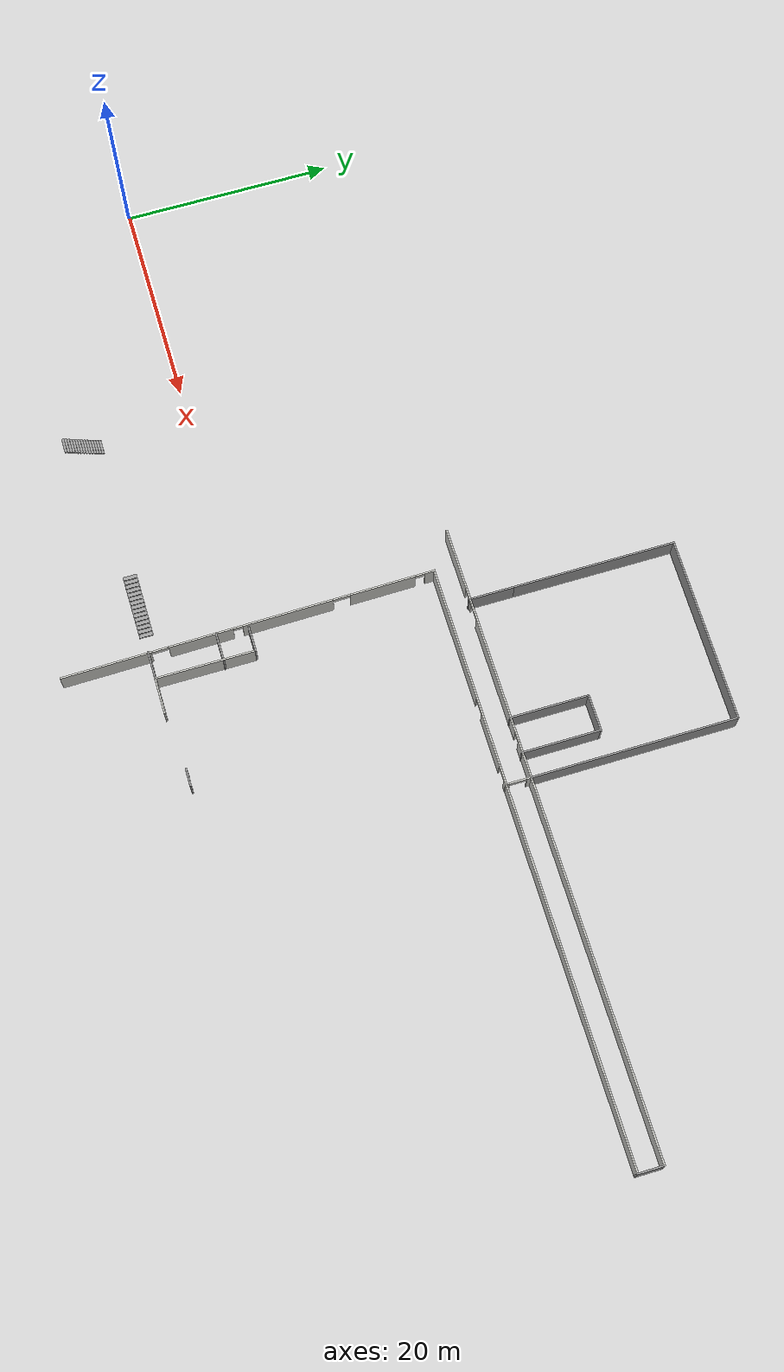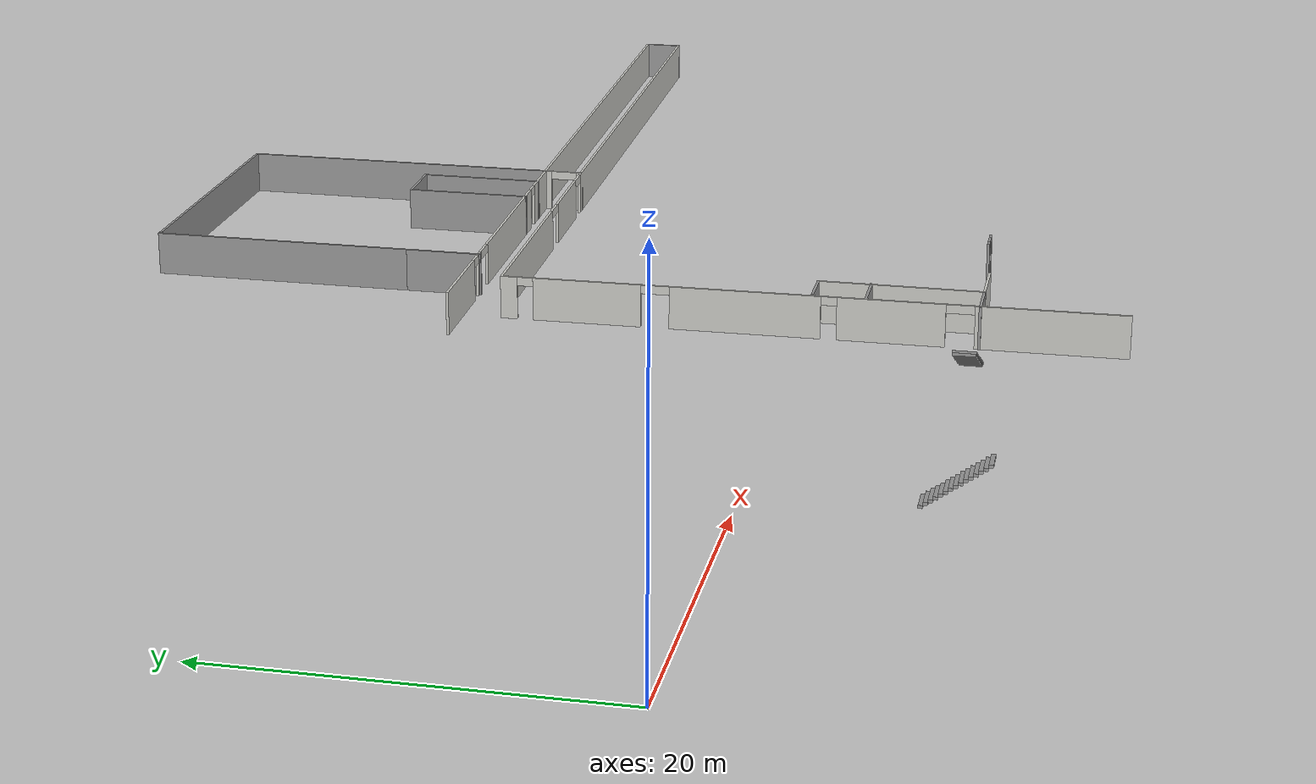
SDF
<sdf version="1.6">
 <world name="default">
  <model name="ground_plane">
   <static>1</static>
   <link name="link">
    <collision name="collision">
     <geometry><plane><normal>0 0 1</normal><size>100 100</size></plane></geometry>
     <surface><friction><ode><mu>100</mu><mu2>50</mu2></ode></friction></surface>
    </collision>
    <visual name="visual">
     <cast_shadows>0</cast_shadows>
     <geometry><plane><normal>0 0 1</normal><size>100 100</size></plane></geometry>
     <material>
      <script><uri>file://media/materials/scripts/gazebo.material</uri><name>Gazebo/Grey</name></script>
     </material>
    </visual>
   </link>
  </model>
  <model name="hospital_LG_detailed">
   <pose>51.8521 -11.413 0 0 -0 0</pose>
   <link name="Stairs_2">
    <visual name="Stairs_2_Visual_0">
     <pose>-8.86162 2.21028 0.083333 0 -0 -1.5708</pose>
     <geometry><box><size>1.27354 0.351869 0.166667</size></box></geometry>
     <material>
      <script><uri>file://media/materials/scripts/gazebo.material</uri><name>Gazebo/Grey</name></script>
      <ambient>1 1 1 1</ambient>
     </material>
     <meta><layer>0</layer></meta>
    </visual>
    <collision name="Stairs_2_Collision_0">
     <geometry><box><size>1.27354 0.351869 0.166667</size></box></geometry>
     <pose>-8.86162 2.21028 0.083333 0 -0 -1.5708</pose>
    </collision>
    <visual name="Stairs_2_Visual_1">
     <pose>-9.21349 2.21028 0.25 0 -0 -1.5708</pose>
     <geometry><box><size>1.27354 0.351869 0.166667</size></box></geometry>
     <material>
      <script><uri>file://media/materials/scripts/gazebo.material</uri><name>Gazebo/Grey</name></script>
      <ambient>1 1 1 1</ambient>
     </material>
     <meta><layer>0</layer></meta>
    </visual>
    <collision name="Stairs_2_Collision_1">
     <geometry><box><size>1.27354 0.351869 0.166667</size></box></geometry>
     <pose>-9.21349 2.21028 0.25 0 -0 -1.5708</pose>
    </collision>
    <visual name="Stairs_2_Visual_2">
     <pose>-9.56536 2.21028 0.416667 0 -0 -1.5708</pose>
     <geometry><box><size>1.27354 0.351869 0.166667</size></box></geometry>
     <material>
      <script><uri>file://media/materials/scripts/gazebo.material</uri><name>Gazebo/Grey</name></script>
      <ambient>1 1 1 1</ambient>
     </material>
     <meta><layer>0</layer></meta>
    </visual>
    <collision name="Stairs_2_Collision_2">
     <geometry><box><size>1.27354 0.351869 0.166667</size></box></geometry>
     <pose>-9.56536 2.21028 0.416667 0 -0 -1.5708</pose>
    </collision>
    <visual name="Stairs_2_Visual_3">
     <pose>-9.91723 2.21028 0.583333 0 -0 -1.5708</pose>
     <geometry><box><size>1.27354 0.351869 0.166667</size></box></geometry>
     <material>
      <script><uri>file://media/materials/scripts/gazebo.material</uri><name>Gazebo/Grey</name></script>
      <ambient>1 1 1 1</ambient>
     </material>
     <meta><layer>0</layer></meta>
    </visual>
    <collision name="Stairs_2_Collision_3">
     <geometry><box><size>1.27354 0.351869 0.166667</size></box></geometry>
     <pose>-9.91723 2.21028 0.583333 0 -0 -1.5708</pose>
    </collision>
    <visual name="Stairs_2_Visual_4">
     <pose>-10.2691 2.21028 0.75 0 -0 -1.5708</pose>
     <geometry><box><size>1.27354 0.351869 0.166667</size></box></geometry>
     <material>
      <script><uri>file://media/materials/scripts/gazebo.material</uri><name>Gazebo/Grey</name></script>
      <ambient>1 1 1 1</ambient>
     </material>
     <meta><layer>0</layer></meta>
    </visual>
    <collision name="Stairs_2_Collision_4">
     <geometry><box><size>1.27354 0.351869 0.166667</size></box></geometry>
     <pose>-10.2691 2.21028 0.75 0 -0 -1.5708</pose>
    </collision>
    <visual name="Stairs_2_Visual_5">
     <pose>-10.621 2.21028 0.916667 0 -0 -1.5708</pose>
     <geometry><box><size>1.27354 0.351869 0.166667</size></box></geometry>
     <material>
      <script><uri>file://media/materials/scripts/gazebo.material</uri><name>Gazebo/Grey</name></script>
      <ambient>1 1 1 1</ambient>
     </material>
     <meta><layer>0</layer></meta>
    </visual>
    <collision name="Stairs_2_Collision_5">
     <geometry><box><size>1.27354 0.351869 0.166667</size></box></geometry>
     <pose>-10.621 2.21028 0.916667 0 -0 -1.5708</pose>
    </collision>
    <visual name="Stairs_2_Visual_6">
     <pose>-10.9728 2.21028 1.08333 0 -0 -1.5708</pose>
     <geometry><box><size>1.27354 0.351869 0.166667</size></box></geometry>
     <material>
      <script><uri>file://media/materials/scripts/gazebo.material</uri><name>Gazebo/Grey</name></script>
      <ambient>1 1 1 1</ambient>
     </material>
     <meta><layer>0</layer></meta>
    </visual>
    <collision name="Stairs_2_Collision_6">
     <geometry><box><size>1.27354 0.351869 0.166667</size></box></geometry>
     <pose>-10.9728 2.21028 1.08333 0 -0 -1.5708</pose>
    </collision>
    <visual name="Stairs_2_Visual_7">
     <pose>-11.3247 2.21028 1.25 0 -0 -1.5708</pose>
     <geometry><box><size>1.27354 0.351869 0.166667</size></box></geometry>
     <material>
      <script><uri>file://media/materials/scripts/gazebo.material</uri><name>Gazebo/Grey</name></script>
      <ambient>1 1 1 1</ambient>
     </material>
     <meta><layer>0</layer></meta>
    </visual>
    <collision name="Stairs_2_Collision_7">
     <geometry><box><size>1.27354 0.351869 0.166667</size></box></geometry>
     <pose>-11.3247 2.21028 1.25 0 -0 -1.5708</pose>
    </collision>
    <visual name="Stairs_2_Visual_8">
     <pose>-11.6766 2.21028 1.41667 0 -0 -1.5708</pose>
     <geometry><box><size>1.27354 0.351869 0.166667</size></box></geometry>
     <material>
      <script><uri>file://media/materials/scripts/gazebo.material</uri><name>Gazebo/Grey</name></script>
      <ambient>1 1 1 1</ambient>
     </material>
     <meta><layer>0</layer></meta>
    </visual>
    <collision name="Stairs_2_Collision_8">
     <geometry><box><size>1.27354 0.351869 0.166667</size></box></geometry>
     <pose>-11.6766 2.21028 1.41667 0 -0 -1.5708</pose>
    </collision>
    <visual name="Stairs_2_Visual_9">
     <pose>-12.0284 2.21028 1.58333 0 -0 -1.5708</pose>
     <geometry><box><size>1.27354 0.351869 0.166667</size></box></geometry>
     <material>
      <script><uri>file://media/materials/scripts/gazebo.material</uri><name>Gazebo/Grey</name></script>
      <ambient>1 1 1 1</ambient>
     </material>
     <meta><layer>0</layer></meta>
    </visual>
    <collision name="Stairs_2_Collision_9">
     <geometry><box><size>1.27354 0.351869 0.166667</size></box></geometry>
     <pose>-12.0284 2.21028 1.58333 0 -0 -1.5708</pose>
    </collision>
    <visual name="Stairs_2_Visual_10">
     <pose>-12.3803 2.21028 1.75 0 -0 -1.5708</pose>
     <geometry><box><size>1.27354 0.351869 0.166667</size></box></geometry>
     <material>
      <script><uri>file://media/materials/scripts/gazebo.material</uri><name>Gazebo/Grey</name></script>
      <ambient>1 1 1 1</ambient>
     </material>
     <meta><layer>0</layer></meta>
    </visual>
    <collision name="Stairs_2_Collision_10">
     <geometry><box><size>1.27354 0.351869 0.166667</size></box></geometry>
     <pose>-12.3803 2.21028 1.75 0 -0 -1.5708</pose>
    </collision>
    <visual name="Stairs_2_Visual_11">
     <pose>-12.7322 2.21028 1.91667 0 -0 -1.5708</pose>
     <geometry><box><size>1.27354 0.351869 0.166667</size></box></geometry>
     <material>
      <script><uri>file://media/materials/scripts/gazebo.material</uri><name>Gazebo/Grey</name></script>
      <ambient>1 1 1 1</ambient>
     </material>
     <meta><layer>0</layer></meta>
    </visual>
    <collision name="Stairs_2_Collision_11">
     <geometry><box><size>1.27354 0.351869 0.166667</size></box></geometry>
     <pose>-12.7322 2.21028 1.91667 0 -0 -1.5708</pose>
    </collision>
    <visual name="Stairs_2_Visual_12">
     <pose>-13.0841 2.21028 2.08333 0 -0 -1.5708</pose>
     <geometry><box><size>1.27354 0.351869 0.166667</size></box></geometry>
     <material>
      <script><uri>file://media/materials/scripts/gazebo.material</uri><name>Gazebo/Grey</name></script>
      <ambient>1 1 1 1</ambient>
     </material>
     <meta><layer>0</layer></meta>
    </visual>
    <collision name="Stairs_2_Collision_12">
     <geometry><box><size>1.27354 0.351869 0.166667</size></box></geometry>
     <pose>-13.0841 2.21028 2.08333 0 -0 -1.5708</pose>
    </collision>
    <visual name="Stairs_2_Visual_13">
     <pose>-13.4359 2.21028 2.25 0 -0 -1.5708</pose>
     <geometry><box><size>1.27354 0.351869 0.166667</size></box></geometry>
     <material>
      <script><uri>file://media/materials/scripts/gazebo.material</uri><name>Gazebo/Grey</name></script>
      <ambient>1 1 1 1</ambient>
     </material>
     <meta><layer>0</layer></meta>
    </visual>
    <collision name="Stairs_2_Collision_13">
     <geometry><box><size>1.27354 0.351869 0.166667</size></box></geometry>
     <pose>-13.4359 2.21028 2.25 0 -0 -1.5708</pose>
    </collision>
    <visual name="Stairs_2_Visual_14">
     <pose>-13.7878 2.21028 2.41667 0 -0 -1.5708</pose>
     <geometry><box><size>1.27354 0.351869 0.166667</size></box></geometry>
     <material>
      <script><uri>file://media/materials/scripts/gazebo.material</uri><name>Gazebo/Grey</name></script>
      <ambient>1 1 1 1</ambient>
     </material>
     <meta><layer>0</layer></meta>
    </visual>
    <collision name="Stairs_2_Collision_14">
     <geometry><box><size>1.27354 0.351869 0.166667</size></box></geometry>
     <pose>-13.7878 2.21028 2.41667 0 -0 -1.5708</pose>
    </collision>
   </link>
   <link name="Stairs_3">
    <visual name="Stairs_3_Visual_0">
     <pose>-28.4104 2.7962 0.083333 0 -0 0</pose>
     <geometry><box><size>1.42214 0.233333 0.166667</size></box></geometry>
     <material>
      <script><uri>file://media/materials/scripts/gazebo.material</uri><name>Gazebo/Grey</name></script>
      <ambient>1 1 1 1</ambient>
     </material>
     <meta><layer>0</layer></meta>
    </visual>
    <collision name="Stairs_3_Collision_0">
     <geometry><box><size>1.42214 0.233333 0.166667</size></box></geometry>
     <pose>-28.4104 2.7962 0.083333 0 -0 0</pose>
    </collision>
    <visual name="Stairs_3_Visual_1">
     <pose>-28.4104 2.56286 0.25 0 -0 0</pose>
     <geometry><box><size>1.42214 0.233333 0.166667</size></box></geometry>
     <material>
      <script><uri>file://media/materials/scripts/gazebo.material</uri><name>Gazebo/Grey</name></script>
      <ambient>1 1 1 1</ambient>
     </material>
     <meta><layer>0</layer></meta>
    </visual>
    <collision name="Stairs_3_Collision_1">
     <geometry><box><size>1.42214 0.233333 0.166667</size></box></geometry>
     <pose>-28.4104 2.56286 0.25 0 -0 0</pose>
    </collision>
    <visual name="Stairs_3_Visual_2">
     <pose>-28.4104 2.32953 0.416667 0 -0 0</pose>
     <geometry><box><size>1.42214 0.233333 0.166667</size></box></geometry>
     <material>
      <script><uri>file://media/materials/scripts/gazebo.material</uri><name>Gazebo/Grey</name></script>
      <ambient>1 1 1 1</ambient>
     </material>
     <meta><layer>0</layer></meta>
    </visual>
    <collision name="Stairs_3_Collision_2">
     <geometry><box><size>1.42214 0.233333 0.166667</size></box></geometry>
     <pose>-28.4104 2.32953 0.416667 0 -0 0</pose>
    </collision>
    <visual name="Stairs_3_Visual_3">
     <pose>-28.4104 2.0962 0.583333 0 -0 0</pose>
     <geometry><box><size>1.42214 0.233333 0.166667</size></box></geometry>
     <material>
      <script><uri>file://media/materials/scripts/gazebo.material</uri><name>Gazebo/Grey</name></script>
      <ambient>1 1 1 1</ambient>
     </material>
     <meta><layer>0</layer></meta>
    </visual>
    <collision name="Stairs_3_Collision_3">
     <geometry><box><size>1.42214 0.233333 0.166667</size></box></geometry>
     <pose>-28.4104 2.0962 0.583333 0 -0 0</pose>
    </collision>
    <visual name="Stairs_3_Visual_4">
     <pose>-28.4104 1.86286 0.75 0 -0 0</pose>
     <geometry><box><size>1.42214 0.233333 0.166667</size></box></geometry>
     <material>
      <script><uri>file://media/materials/scripts/gazebo.material</uri><name>Gazebo/Grey</name></script>
      <ambient>1 1 1 1</ambient>
     </material>
     <meta><layer>0</layer></meta>
    </visual>
    <collision name="Stairs_3_Collision_4">
     <geometry><box><size>1.42214 0.233333 0.166667</size></box></geometry>
     <pose>-28.4104 1.86286 0.75 0 -0 0</pose>
    </collision>
    <visual name="Stairs_3_Visual_5">
     <pose>-28.4104 1.62953 0.916667 0 -0 0</pose>
     <geometry><box><size>1.42214 0.233333 0.166667</size></box></geometry>
     <material>
      <script><uri>file://media/materials/scripts/gazebo.material</uri><name>Gazebo/Grey</name></script>
      <ambient>1 1 1 1</ambient>
     </material>
     <meta><layer>0</layer></meta>
    </visual>
    <collision name="Stairs_3_Collision_5">
     <geometry><box><size>1.42214 0.233333 0.166667</size></box></geometry>
     <pose>-28.4104 1.62953 0.916667 0 -0 0</pose>
    </collision>
    <visual name="Stairs_3_Visual_6">
     <pose>-28.4104 1.3962 1.08333 0 -0 0</pose>
     <geometry><box><size>1.42214 0.233333 0.166667</size></box></geometry>
     <material>
      <script><uri>file://media/materials/scripts/gazebo.material</uri><name>Gazebo/Grey</name></script>
      <ambient>1 1 1 1</ambient>
     </material>
     <meta><layer>0</layer></meta>
    </visual>
    <collision name="Stairs_3_Collision_6">
     <geometry><box><size>1.42214 0.233333 0.166667</size></box></geometry>
     <pose>-28.4104 1.3962 1.08333 0 -0 0</pose>
    </collision>
    <visual name="Stairs_3_Visual_7">
     <pose>-28.4104 1.16287 1.25 0 -0 0</pose>
     <geometry><box><size>1.42214 0.233333 0.166667</size></box></geometry>
     <material>
      <script><uri>file://media/materials/scripts/gazebo.material</uri><name>Gazebo/Grey</name></script>
      <ambient>1 1 1 1</ambient>
     </material>
     <meta><layer>0</layer></meta>
    </visual>
    <collision name="Stairs_3_Collision_7">
     <geometry><box><size>1.42214 0.233333 0.166667</size></box></geometry>
     <pose>-28.4104 1.16287 1.25 0 -0 0</pose>
    </collision>
    <visual name="Stairs_3_Visual_8">
     <pose>-28.4104 0.929532 1.41667 0 -0 0</pose>
     <geometry><box><size>1.42214 0.233333 0.166667</size></box></geometry>
     <material>
      <script><uri>file://media/materials/scripts/gazebo.material</uri><name>Gazebo/Grey</name></script>
      <ambient>1 1 1 1</ambient>
     </material>
     <meta><layer>0</layer></meta>
    </visual>
    <collision name="Stairs_3_Collision_8">
     <geometry><box><size>1.42214 0.233333 0.166667</size></box></geometry>
     <pose>-28.4104 0.929532 1.41667 0 -0 0</pose>
    </collision>
    <visual name="Stairs_3_Visual_9">
     <pose>-28.4104 0.696199 1.58333 0 -0 0</pose>
     <geometry><box><size>1.42214 0.233333 0.166667</size></box></geometry>
     <material>
      <script><uri>file://media/materials/scripts/gazebo.material</uri><name>Gazebo/Grey</name></script>
      <ambient>1 1 1 1</ambient>
     </material>
     <meta><layer>0</layer></meta>
    </visual>
    <collision name="Stairs_3_Collision_9">
     <geometry><box><size>1.42214 0.233333 0.166667</size></box></geometry>
     <pose>-28.4104 0.696199 1.58333 0 -0 0</pose>
    </collision>
    <visual name="Stairs_3_Visual_10">
     <pose>-28.4104 0.462866 1.75 0 -0 0</pose>
     <geometry><box><size>1.42214 0.233333 0.166667</size></box></geometry>
     <material>
      <script><uri>file://media/materials/scripts/gazebo.material</uri><name>Gazebo/Grey</name></script>
      <ambient>1 1 1 1</ambient>
     </material>
     <meta><layer>0</layer></meta>
    </visual>
    <collision name="Stairs_3_Collision_10">
     <geometry><box><size>1.42214 0.233333 0.166667</size></box></geometry>
     <pose>-28.4104 0.462866 1.75 0 -0 0</pose>
    </collision>
    <visual name="Stairs_3_Visual_11">
     <pose>-28.4104 0.229532 1.91667 0 -0 0</pose>
     <geometry><box><size>1.42214 0.233333 0.166667</size></box></geometry>
     <material>
      <script><uri>file://media/materials/scripts/gazebo.material</uri><name>Gazebo/Grey</name></script>
      <ambient>1 1 1 1</ambient>
     </material>
     <meta><layer>0</layer></meta>
    </visual>
    <collision name="Stairs_3_Collision_11">
     <geometry><box><size>1.42214 0.233333 0.166667</size></box></geometry>
     <pose>-28.4104 0.229532 1.91667 0 -0 0</pose>
    </collision>
    <visual name="Stairs_3_Visual_12">
     <pose>-28.4104 -0.003801 2.08333 0 -0 0</pose>
     <geometry><box><size>1.42214 0.233333 0.166667</size></box></geometry>
     <material>
      <script><uri>file://media/materials/scripts/gazebo.material</uri><name>Gazebo/Grey</name></script>
      <ambient>1 1 1 1</ambient>
     </material>
     <meta><layer>0</layer></meta>
    </visual>
    <collision name="Stairs_3_Collision_12">
     <geometry><box><size>1.42214 0.233333 0.166667</size></box></geometry>
     <pose>-28.4104 -0.003801 2.08333 0 -0 0</pose>
    </collision>
    <visual name="Stairs_3_Visual_13">
     <pose>-28.4104 -0.237134 2.25 0 -0 0</pose>
     <geometry><box><size>1.42214 0.233333 0.166667</size></box></geometry>
     <material>
      <script><uri>file://media/materials/scripts/gazebo.material</uri><name>Gazebo/Grey</name></script>
      <ambient>1 1 1 1</ambient>
     </material>
     <meta><layer>0</layer></meta>
    </visual>
    <collision name="Stairs_3_Collision_13">
     <geometry><box><size>1.42214 0.233333 0.166667</size></box></geometry>
     <pose>-28.4104 -0.237134 2.25 0 -0 0</pose>
    </collision>
    <visual name="Stairs_3_Visual_14">
     <pose>-28.4104 -0.470468 2.41667 0 -0 0</pose>
     <geometry><box><size>1.42214 0.233333 0.166667</size></box></geometry>
     <material>
      <script><uri>file://media/materials/scripts/gazebo.material</uri><name>Gazebo/Grey</name></script>
      <ambient>1 1 1 1</ambient>
     </material>
     <meta><layer>0</layer></meta>
    </visual>
    <collision name="Stairs_3_Collision_14">
     <geometry><box><size>1.42214 0.233333 0.166667</size></box></geometry>
     <pose>-28.4104 -0.470468 2.41667 0 -0 0</pose>
    </collision>
   </link>
   <link name="Wall_19">
    <pose>19.8114 31.6969 0 0 -0 0.011412</pose>
    <visual name="Wall_19_Visual_0">
     <pose>-26.9038 0 1.25 0 -0 0</pose>
     <geometry><box><size>5.94974 0.15 2.5</size></box></geometry>
     <material>
      <script><uri>file://media/materials/scripts/gazebo.material</uri><name>Gazebo/CeilingTiled</name></script>
      <ambient>1 1 1 1</ambient>
     </material>
     <meta><layer>0</layer></meta>
    </visual>
    <collision name="Wall_19_Collision_0">
     <geometry><box><size>5.94974 0.15 2.5</size></box></geometry>
     <pose>-26.9038 0 1.25 0 -0 0</pose>
    </collision>
    <visual name="Wall_19_Visual_1">
     <pose>-22.7092 0 1.25 0 -0 0</pose>
     <geometry><box><size>0.639467 0.15 2.5</size></box></geometry>
     <material>
      <script><uri>file://media/materials/scripts/gazebo.material</uri><name>Gazebo/CeilingTiled</name></script>
      <ambient>1 1 1 1</ambient>
     </material>
     <meta><layer>0</layer></meta>
    </visual>
    <collision name="Wall_19_Collision_1">
     <geometry><box><size>0.639467 0.15 2.5</size></box></geometry>
     <pose>-22.7092 0 1.25 0 -0 0</pose>
    </collision>
    <visual name="Wall_19_Visual_2">
     <pose>-15.171 0 1.25 0 -0 0</pose>
     <geometry><box><size>11.2421 0.15 2.5</size></box></geometry>
     <material>
      <script><uri>file://media/materials/scripts/gazebo.material</uri><name>Gazebo/CeilingTiled</name></script>
      <ambient>1 1 1 1</ambient>
     </material>
     <meta><layer>0</layer></meta>
    </visual>
    <collision name="Wall_19_Collision_2">
     <geometry><box><size>11.2421 0.15 2.5</size></box></geometry>
     <pose>-15.171 0 1.25 0 -0 0</pose>
    </collision>
    <visual name="Wall_19_Visual_3">
     <pose>10.6144 0 1.25 0 -0 0</pose>
     <geometry><box><size>38.5287 0.15 2.5</size></box></geometry>
     <material>
      <script><uri>file://media/materials/scripts/gazebo.material</uri><name>Gazebo/CeilingTiled</name></script>
      <ambient>1 1 1 1</ambient>
     </material>
     <meta><layer>0</layer></meta>
    </visual>
    <collision name="Wall_19_Collision_3">
     <geometry><box><size>38.5287 0.15 2.5</size></box></geometry>
     <pose>10.6144 0 1.25 0 -0 0</pose>
    </collision>
    <visual name="Wall_19_Visual_4">
     <pose>-23.479 0 2.25 0 -0 0</pose>
     <geometry><box><size>0.9 0.15 0.5</size></box></geometry>
     <material>
      <script><uri>file://media/materials/scripts/gazebo.material</uri><name>Gazebo/CeilingTiled</name></script>
      <ambient>1 1 1 1</ambient>
     </material>
     <meta><layer>0</layer></meta>
    </visual>
    <collision name="Wall_19_Collision_4">
     <geometry><box><size>0.9 0.15 0.5</size></box></geometry>
     <pose>-23.479 0 2.25 0 -0 0</pose>
    </collision>
    <visual name="Wall_19_Visual_5">
     <pose>-21.5908 0 2.25 0 -0 0</pose>
     <geometry><box><size>1.59746 0.15 0.5</size></box></geometry>
     <material>
      <script><uri>file://media/materials/scripts/gazebo.material</uri><name>Gazebo/CeilingTiled</name></script>
      <ambient>1 1 1 1</ambient>
     </material>
     <meta><layer>0</layer></meta>
    </visual>
    <collision name="Wall_19_Collision_5">
     <geometry><box><size>1.59746 0.15 0.5</size></box></geometry>
     <pose>-21.5908 0 2.25 0 -0 0</pose>
    </collision>
    <visual name="Wall_19_Visual_6">
     <pose>-9.09996 0 2.25 0 -0 0</pose>
     <geometry><box><size>0.9 0.15 0.5</size></box></geometry>
     <material>
      <script><uri>file://media/materials/scripts/gazebo.material</uri><name>Gazebo/CeilingTiled</name></script>
      <ambient>1 1 1 1</ambient>
     </material>
     <meta><layer>0</layer></meta>
    </visual>
    <collision name="Wall_19_Collision_6">
     <geometry><box><size>0.9 0.15 0.5</size></box></geometry>
     <pose>-9.09996 0 2.25 0 -0 0</pose>
    </collision>
   </link>
   <link name="Wall_20">
    <collision name="Wall_20_Collision">
     <geometry><box><size>2.5 0.15 2.5</size></box></geometry>
     <pose>0 0 1.25 0 -0 0</pose>
    </collision>
    <visual name="Wall_20_Visual">
     <pose>0 0 1.25 0 -0 0</pose>
     <geometry><box><size>2.5 0.15 2.5</size></box></geometry>
     <material>
      <script><uri>file://media/materials/scripts/gazebo.material</uri><name>Gazebo/Grey</name></script>
      <ambient>1 1 1 1</ambient>
     </material>
     <meta><layer>0</layer></meta>
    </visual>
    <pose>49.6132 30.862 0 0 -0 -1.5708</pose>
   </link>
   <link name="Wall_21">
    <pose>21.5308 29.3985 0 0 -0 -3.13082</pose>
    <visual name="Wall_21_Visual_0">
     <pose>-10.3888 0 1.25 0 -0 0</pose>
     <geometry><box><size>35.5404 0.15 2.5</size></box></geometry>
     <material>
      <script><uri>file://media/materials/scripts/gazebo.material</uri><name>Gazebo/CeilingTiled</name></script>
      <ambient>1 1 1 1</ambient>
     </material>
     <meta><layer>0</layer></meta>
    </visual>
    <collision name="Wall_21_Collision_0">
     <geometry><box><size>35.5404 0.15 2.5</size></box></geometry>
     <pose>-10.3888 0 1.25 0 -0 0</pose>
    </collision>
    <visual name="Wall_21_Visual_1">
     <pose>11.2873 0 1.25 0 -0 0</pose>
     <geometry><box><size>5.11112 0.15 2.5</size></box></geometry>
     <material>
      <script><uri>file://media/materials/scripts/gazebo.material</uri><name>Gazebo/CeilingTiled</name></script>
      <ambient>1 1 1 1</ambient>
     </material>
     <meta><layer>0</layer></meta>
    </visual>
    <collision name="Wall_21_Collision_1">
     <geometry><box><size>5.11112 0.15 2.5</size></box></geometry>
     <pose>11.2873 0 1.25 0 -0 0</pose>
    </collision>
    <visual name="Wall_21_Visual_2">
     <pose>21.7323 0 1.25 0 -0 0</pose>
     <geometry><box><size>12.8533 0.15 2.5</size></box></geometry>
     <material>
      <script><uri>file://media/materials/scripts/gazebo.material</uri><name>Gazebo/CeilingTiled</name></script>
      <ambient>1 1 1 1</ambient>
     </material>
     <meta><layer>0</layer></meta>
    </visual>
    <collision name="Wall_21_Collision_2">
     <geometry><box><size>12.8533 0.15 2.5</size></box></geometry>
     <pose>21.7323 0 1.25 0 -0 0</pose>
    </collision>
    <visual name="Wall_21_Visual_3">
     <pose>8.05659 0 2.25 0 -0 0</pose>
     <geometry><box><size>1.35029 0.15 0.5</size></box></geometry>
     <material>
      <script><uri>file://media/materials/scripts/gazebo.material</uri><name>Gazebo/CeilingTiled</name></script>
      <ambient>1 1 1 1</ambient>
     </material>
     <meta><layer>0</layer></meta>
    </visual>
    <collision name="Wall_21_Collision_3">
     <geometry><box><size>1.35029 0.15 0.5</size></box></geometry>
     <pose>8.05659 0 2.25 0 -0 0</pose>
    </collision>
    <visual name="Wall_21_Visual_4">
     <pose>14.5743 0 2.25 0 -0 0</pose>
     <geometry><box><size>1.46286 0.15 0.5</size></box></geometry>
     <material>
      <script><uri>file://media/materials/scripts/gazebo.material</uri><name>Gazebo/CeilingTiled</name></script>
      <ambient>1 1 1 1</ambient>
     </material>
     <meta><layer>0</layer></meta>
    </visual>
    <collision name="Wall_21_Collision_4">
     <geometry><box><size>1.46286 0.15 0.5</size></box></geometry>
     <pose>14.5743 0 2.25 0 -0 0</pose>
    </collision>
   </link>
   <link name="Wall_23">
    <pose>-6.34809 11.4815 0 0 -0 -1.55855</pose>
    <visual name="Wall_23_Visual_0">
     <pose>-17.1986 0 1.25 0 -0 0</pose>
     <geometry><box><size>0.984488 0.15 2.5</size></box></geometry>
     <material>
      <script><uri>file://media/materials/scripts/gazebo.material</uri><name>Gazebo/CeilingTiled</name></script>
      <ambient>1 1 1 1</ambient>
     </material>
     <meta><layer>0</layer></meta>
    </visual>
    <collision name="Wall_23_Collision_0">
     <geometry><box><size>0.984488 0.15 2.5</size></box></geometry>
     <pose>-17.1986 0 1.25 0 -0 0</pose>
    </collision>
    <visual name="Wall_23_Visual_1">
     <pose>-12.6832 0 1.25 0 -0 0</pose>
     <geometry><box><size>6.2462 0.15 2.5</size></box></geometry>
     <material>
      <script><uri>file://media/materials/scripts/gazebo.material</uri><name>Gazebo/CeilingTiled</name></script>
      <ambient>1 1 1 1</ambient>
     </material>
     <meta><layer>0</layer></meta>
    </visual>
    <collision name="Wall_23_Collision_1">
     <geometry><box><size>6.2462 0.15 2.5</size></box></geometry>
     <pose>-12.6832 0 1.25 0 -0 0</pose>
    </collision>
    <visual name="Wall_23_Visual_2">
     <pose>-3.66014 0 1.25 0 -0 0</pose>
     <geometry><box><size>8.56539 0.15 2.5</size></box></geometry>
     <material>
      <script><uri>file://media/materials/scripts/gazebo.material</uri><name>Gazebo/CeilingTiled</name></script>
      <ambient>1 1 1 1</ambient>
     </material>
     <meta><layer>0</layer></meta>
    </visual>
    <collision name="Wall_23_Collision_2">
     <geometry><box><size>8.56539 0.15 2.5</size></box></geometry>
     <pose>-3.66014 0 1.25 0 -0 0</pose>
    </collision>
    <visual name="Wall_23_Visual_3">
     <pose>4.54792 0 1.25 0 -0 0</pose>
     <geometry><box><size>6.05074 0.15 2.5</size></box></geometry>
     <material>
      <script><uri>file://media/materials/scripts/gazebo.material</uri><name>Gazebo/CeilingTiled</name></script>
      <ambient>1 1 1 1</ambient>
     </material>
     <meta><layer>0</layer></meta>
    </visual>
    <collision name="Wall_23_Collision_3">
     <geometry><box><size>6.05074 0.15 2.5</size></box></geometry>
     <pose>4.54792 0 1.25 0 -0 0</pose>
    </collision>
    <visual name="Wall_23_Visual_4">
     <pose>13.4369 0 1.25 0 -0 0</pose>
     <geometry><box><size>8.50789 0.15 2.5</size></box></geometry>
     <material>
      <script><uri>file://media/materials/scripts/gazebo.material</uri><name>Gazebo/CeilingTiled</name></script>
      <ambient>1 1 1 1</ambient>
     </material>
     <meta><layer>0</layer></meta>
    </visual>
    <collision name="Wall_23_Collision_4">
     <geometry><box><size>8.50789 0.15 2.5</size></box></geometry>
     <pose>13.4369 0 1.25 0 -0 0</pose>
    </collision>
    <visual name="Wall_23_Visual_5">
     <pose>-16.2563 0 2.25 0 -0 0</pose>
     <geometry><box><size>0.9 0.15 0.5</size></box></geometry>
     <material>
      <script><uri>file://media/materials/scripts/gazebo.material</uri><name>Gazebo/CeilingTiled</name></script>
      <ambient>1 1 1 1</ambient>
     </material>
     <meta><layer>0</layer></meta>
    </visual>
    <collision name="Wall_23_Collision_5">
     <geometry><box><size>0.9 0.15 0.5</size></box></geometry>
     <pose>-16.2563 0 2.25 0 -0 0</pose>
    </collision>
    <visual name="Wall_23_Visual_6">
     <pose>-8.75149 0 2.25 0 -0 0</pose>
     <geometry><box><size>1.61732 0.15 0.5</size></box></geometry>
     <material>
      <script><uri>file://media/materials/scripts/gazebo.material</uri><name>Gazebo/CeilingTiled</name></script>
      <ambient>1 1 1 1</ambient>
     </material>
     <meta><layer>0</layer></meta>
    </visual>
    <collision name="Wall_23_Collision_6">
     <geometry><box><size>1.61732 0.15 0.5</size></box></geometry>
     <pose>-8.75149 0 2.25 0 -0 0</pose>
    </collision>
    <visual name="Wall_23_Visual_7">
     <pose>1.07256 0 2.25 0 -0 0</pose>
     <geometry><box><size>0.9 0.15 0.5</size></box></geometry>
     <material>
      <script><uri>file://media/materials/scripts/gazebo.material</uri><name>Gazebo/CeilingTiled</name></script>
      <ambient>1 1 1 1</ambient>
     </material>
     <meta><layer>0</layer></meta>
    </visual>
    <collision name="Wall_23_Collision_7">
     <geometry><box><size>0.9 0.15 0.5</size></box></geometry>
     <pose>1.07256 0 2.25 0 -0 0</pose>
    </collision>
    <visual name="Wall_23_Visual_8">
     <pose>8.37812 0 2.25 0 -0 0</pose>
     <geometry><box><size>1.60965 0.15 0.5</size></box></geometry>
     <material>
      <script><uri>file://media/materials/scripts/gazebo.material</uri><name>Gazebo/CeilingTiled</name></script>
      <ambient>1 1 1 1</ambient>
     </material>
     <meta><layer>0</layer></meta>
    </visual>
    <collision name="Wall_23_Collision_8">
     <geometry><box><size>1.60965 0.15 0.5</size></box></geometry>
     <pose>8.37812 0 2.25 0 -0 0</pose>
    </collision>
   </link>
   <link name="Wall_61">
    <collision name="Wall_61_Collision">
     <geometry><box><size>2.75 0.15 2.5</size></box></geometry>
     <pose>0 0 1.25 0 -0 0</pose>
    </collision>
    <visual name="Wall_61_Visual">
     <pose>0 0 1.25 0 -0 0</pose>
     <geometry><box><size>2.75 0.15 2.5</size></box></geometry>
     <material>
      <script><uri>file://media/materials/scripts/gazebo.material</uri><name>Gazebo/Grey</name></script>
      <ambient>1 1 1 1</ambient>
     </material>
     <meta><layer>0</layer></meta>
    </visual>
    <pose>-5.00822 2.01978 0 0 -0 0</pose>
   </link>
   <link name="Wall_62">
    <collision name="Wall_62_Collision">
     <geometry><box><size>9.5 0.15 2.5</size></box></geometry>
     <pose>0 0 1.25 0 -0 0</pose>
    </collision>
    <visual name="Wall_62_Visual">
     <pose>0 0 1.25 0 -0 0</pose>
     <geometry><box><size>9.5 0.15 2.5</size></box></geometry>
     <material>
      <script><uri>file://media/materials/scripts/gazebo.material</uri><name>Gazebo/CeilingTiled</name></script>
      <ambient>1 1 1 1</ambient>
     </material>
     <meta><layer>0</layer></meta>
    </visual>
    <pose>-3.70822 6.69478 0 0 -0 1.5708</pose>
   </link>
   <link name="Wall_63">
    <collision name="Wall_63_Collision">
     <geometry><box><size>2.5 0.15 2.5</size></box></geometry>
     <pose>0 0 1.25 0 -0 0</pose>
    </collision>
    <visual name="Wall_63_Visual">
     <pose>0 0 1.25 0 -0 0</pose>
     <geometry><box><size>2.5 0.15 2.5</size></box></geometry>
     <material>
      <script><uri>file://media/materials/scripts/gazebo.material</uri><name>Gazebo/Grey</name></script>
      <ambient>1 1 1 1</ambient>
     </material>
     <meta><layer>0</layer></meta>
    </visual>
    <pose>-4.88322 11.3698 0 0 -0 3.14159</pose>
   </link>
   <link name="Wall_65">
    <collision name="Wall_65_Collision">
     <geometry><box><size>2.75 0.15 2.5</size></box></geometry>
     <pose>0 0 1.25 0 -0 0</pose>
    </collision>
    <visual name="Wall_65_Visual">
     <pose>0 0 1.25 0 -0 0</pose>
     <geometry><box><size>2.75 0.15 2.5</size></box></geometry>
     <material>
      <script><uri>file://media/materials/scripts/gazebo.material</uri><name>Gazebo/Grey</name></script>
      <ambient>1 1 1 1</ambient>
     </material>
     <meta><layer>0</layer></meta>
    </visual>
    <pose>-4.9285 8.36512 0 0 -0 3.14159</pose>
   </link>
   <link name="Wall_72">
    <collision name="Wall_72_Collision">
     <geometry><box><size>4.5 0.15 2.5</size></box></geometry>
     <pose>0 0 1.25 0 -0 0</pose>
    </collision>
    <visual name="Wall_72_Visual">
     <pose>0 0 1.25 0 -0 0</pose>
     <geometry><box><size>4.5 0.15 2.5</size></box></geometry>
     <material>
      <script><uri>file://media/materials/scripts/gazebo.material</uri><name>Gazebo/Grey</name></script>
      <ambient>1 1 1 1</ambient>
     </material>
     <meta><layer>0</layer></meta>
    </visual>
    <pose>-2.95478 33.513 0 0 -0 1.5708</pose>
   </link>
   <link name="Wall_76">
    <collision name="Wall_76_Collision">
     <geometry><box><size>15.5 0.15 2.5</size></box></geometry>
     <pose>0 0 1.25 0 -0 0</pose>
    </collision>
    <visual name="Wall_76_Visual">
     <pose>0 0 1.25 0 -0 0</pose>
     <geometry><box><size>15.5 0.15 2.5</size></box></geometry>
     <material>
      <script><uri>file://media/materials/scripts/gazebo.material</uri><name>Gazebo/Grey</name></script>
      <ambient>1 1 1 1</ambient>
     </material>
     <meta><layer>0</layer></meta>
    </visual>
    <pose>-2.95478 43.363 0 0 -0 1.5708</pose>
   </link>
   <link name="Wall_77">
    <collision name="Wall_77_Collision">
     <geometry><box><size>17.75 0.15 2.5</size></box></geometry>
     <pose>0 0 1.25 0 -0 0</pose>
    </collision>
    <visual name="Wall_77_Visual">
     <pose>0 0 1.25 0 -0 0</pose>
     <geometry><box><size>17.75 0.15 2.5</size></box></geometry>
     <material>
      <script><uri>file://media/materials/scripts/gazebo.material</uri><name>Gazebo/Grey</name></script>
      <ambient>1 1 1 1</ambient>
     </material>
     <meta><layer>0</layer></meta>
    </visual>
    <pose>5.84522 51.038 0 0 -0 0</pose>
   </link>
   <link name="Wall_78">
    <collision name="Wall_78_Collision">
     <geometry><box><size>19.534 0.15 2.5</size></box></geometry>
     <pose>0 0 1.25 0 -0 0</pose>
    </collision>
    <visual name="Wall_78_Visual">
     <pose>0 0 1.25 0 -0 0</pose>
     <geometry><box><size>19.534 0.15 2.5</size></box></geometry>
     <material>
      <script><uri>file://media/materials/scripts/gazebo.material</uri><name>Gazebo/Grey</name></script>
      <ambient>1 1 1 1</ambient>
     </material>
     <meta><layer>0</layer></meta>
    </visual>
    <pose>14.6572 41.346 0 0 -0 -1.56956</pose>
   </link>
   <link name="Wall_80">
    <collision name="Wall_80_Collision">
     <geometry><box><size>7.5 0.15 2.5</size></box></geometry>
     <pose>0 0 1.25 0 -0 0</pose>
    </collision>
    <visual name="Wall_80_Visual">
     <pose>0 0 1.25 0 -0 0</pose>
     <geometry><box><size>7.5 0.15 2.5</size></box></geometry>
     <material>
      <script><uri>file://media/materials/scripts/gazebo.material</uri><name>Gazebo/Grey</name></script>
      <ambient>1 1 1 1</ambient>
     </material>
     <meta><layer>0</layer></meta>
    </visual>
    <pose>8.86221 35.204 0 0 -0 1.5708</pose>
   </link>
   <link name="Wall_81">
    <collision name="Wall_81_Collision">
     <geometry><box><size>3.54851 0.15 2.5</size></box></geometry>
     <pose>0 0 1.25 0 -0 0</pose>
    </collision>
    <visual name="Wall_81_Visual">
     <pose>0 0 1.25 0 -0 0</pose>
     <geometry><box><size>3.54851 0.15 2.5</size></box></geometry>
     <material>
      <script><uri>file://media/materials/scripts/gazebo.material</uri><name>Gazebo/Grey</name></script>
      <ambient>1 1 1 1</ambient>
     </material>
     <meta><layer>0</layer></meta>
    </visual>
    <pose>10.5694 38.8991 0 0 -0 0.011837</pose>
   </link>
   <link name="Wall_82">
    <collision name="Wall_82_Collision">
     <geometry><box><size>7.5 0.15 2.5</size></box></geometry>
     <pose>0 0 1.25 0 -0 0</pose>
    </collision>
    <visual name="Wall_82_Visual">
     <pose>0 0 1.25 0 -0 0</pose>
     <geometry><box><size>7.5 0.15 2.5</size></box></geometry>
     <material>
      <script><uri>file://media/materials/scripts/gazebo.material</uri><name>Gazebo/Grey</name></script>
      <ambient>1 1 1 1</ambient>
     </material>
     <meta><layer>0</layer></meta>
    </visual>
    <pose>12.2605 35.2522 0 0 -0 -1.5708</pose>
   </link>
   <link name="Wall_84">
    <pose>14.6652 30.483 0 0 -0 -1.5708</pose>
    <visual name="Wall_84_Visual_0">
     <pose>-0.993166 0 1.25 0 -0 0</pose>
     <geometry><box><size>0.513669 0.15 2.5</size></box></geometry>
     <material>
      <script><uri>file://media/materials/scripts/gazebo.material</uri><name>Gazebo/CeilingTiled</name></script>
      <ambient>1 1 1 1</ambient>
     </material>
     <meta><layer>0</layer></meta>
    </visual>
    <collision name="Wall_84_Collision_0">
     <geometry><box><size>0.513669 0.15 2.5</size></box></geometry>
     <pose>-0.993166 0 1.25 0 -0 0</pose>
    </collision>
    <visual name="Wall_84_Visual_1">
     <pose>1.05862 0 1.25 0 -0 0</pose>
     <geometry><box><size>0.382756 0.15 2.5</size></box></geometry>
     <material>
      <script><uri>file://media/materials/scripts/gazebo.material</uri><name>Gazebo/CeilingTiled</name></script>
      <ambient>1 1 1 1</ambient>
     </material>
     <meta><layer>0</layer></meta>
    </visual>
    <collision name="Wall_84_Collision_1">
     <geometry><box><size>0.382756 0.15 2.5</size></box></geometry>
     <pose>1.05862 0 1.25 0 -0 0</pose>
    </collision>
    <visual name="Wall_84_Visual_2">
     <pose>0.065456 0 2.25 0 -0 0</pose>
     <geometry><box><size>1.60357 0.15 0.5</size></box></geometry>
     <material>
      <script><uri>file://media/materials/scripts/gazebo.material</uri><name>Gazebo/CeilingTiled</name></script>
      <ambient>1 1 1 1</ambient>
     </material>
     <meta><layer>0</layer></meta>
    </visual>
    <collision name="Wall_84_Collision_2">
     <geometry><box><size>1.60357 0.15 0.5</size></box></geometry>
     <pose>0.065456 0 2.25 0 -0 0</pose>
    </collision>
   </link>
   <link name="Wall_86">
    <collision name="Wall_86_Collision">
     <geometry><box><size>3.5 0.15 2.5</size></box></geometry>
     <pose>0 0 1.25 0 -0 0</pose>
    </collision>
    <visual name="Wall_86_Visual">
     <pose>0 0 1.25 0 -0 0</pose>
     <geometry><box><size>3.5 0.15 2.5</size></box></geometry>
     <material>
      <script><uri>file://media/materials/scripts/gazebo.material</uri><name>Gazebo/CeilingTiled</name></script>
      <ambient>1 1 1 1</ambient>
     </material>
     <meta><layer>0</layer></meta>
    </visual>
    <pose>-2.03322 2.01978 0 0 -0 0</pose>
   </link>
   <link name="Wall_93">
    <pose>6.01927 2.54492 0 0 -0 0</pose>
    <visual name="Wall_93_Visual_0">
     <pose>-0.683181 0 1.25 0 -0 0</pose>
     <geometry><box><size>0.383637 0.15 2.5</size></box></geometry>
     <material>
      <script><uri>file://media/materials/scripts/gazebo.material</uri><name>Gazebo/Grey</name></script>
      <ambient>1 1 1 1</ambient>
     </material>
     <meta><layer>0</layer></meta>
    </visual>
    <collision name="Wall_93_Collision_0">
     <geometry><box><size>0.383637 0.15 2.5</size></box></geometry>
     <pose>-0.683181 0 1.25 0 -0 0</pose>
    </collision>
    <visual name="Wall_93_Visual_1">
     <pose>0.641819 0 1.25 0 -0 0</pose>
     <geometry><box><size>0.466363 0.15 2.5</size></box></geometry>
     <material>
      <script><uri>file://media/materials/scripts/gazebo.material</uri><name>Gazebo/Grey</name></script>
      <ambient>1 1 1 1</ambient>
     </material>
     <meta><layer>0</layer></meta>
    </visual>
    <collision name="Wall_93_Collision_1">
     <geometry><box><size>0.466363 0.15 2.5</size></box></geometry>
     <pose>0.641819 0 1.25 0 -0 0</pose>
    </collision>
    <visual name="Wall_93_Visual_2">
     <pose>-0.041363 0 2.25 0 -0 0</pose>
     <geometry><box><size>0.9 0.15 0.5</size></box></geometry>
     <material>
      <script><uri>file://media/materials/scripts/gazebo.material</uri><name>Gazebo/Grey</name></script>
      <ambient>1 1 1 1</ambient>
     </material>
     <meta><layer>0</layer></meta>
    </visual>
    <collision name="Wall_93_Collision_2">
     <geometry><box><size>0.9 0.15 0.5</size></box></geometry>
     <pose>-0.041363 0 2.25 0 -0 0</pose>
    </collision>
   </link>
   <static>1</static>
  </model>
 </world>
</sdf>
